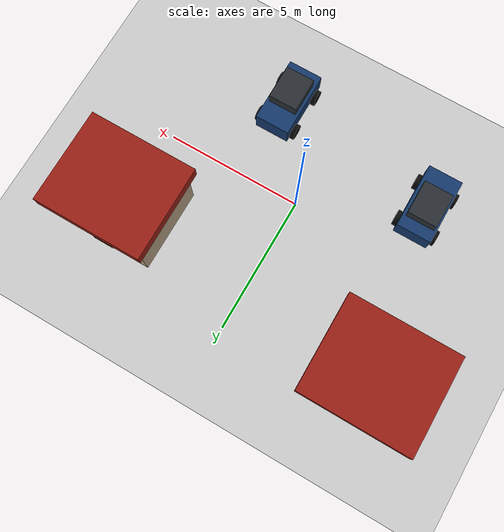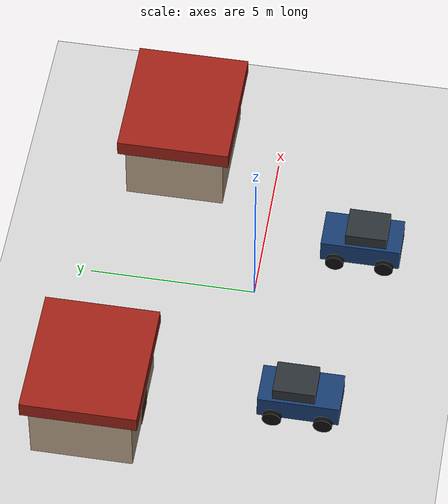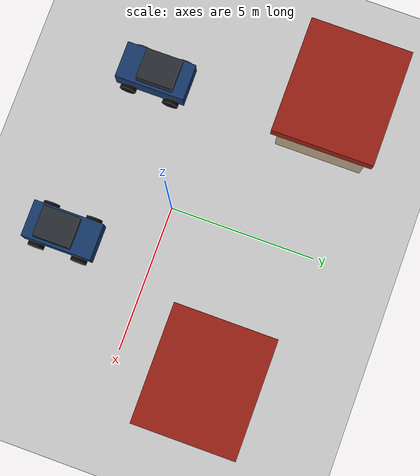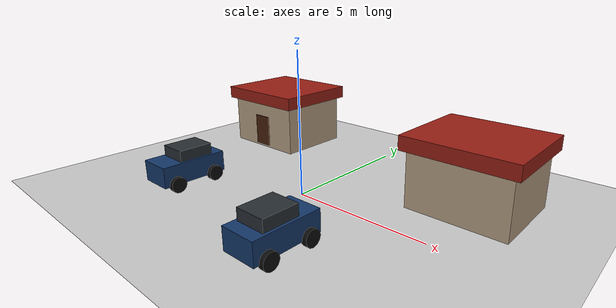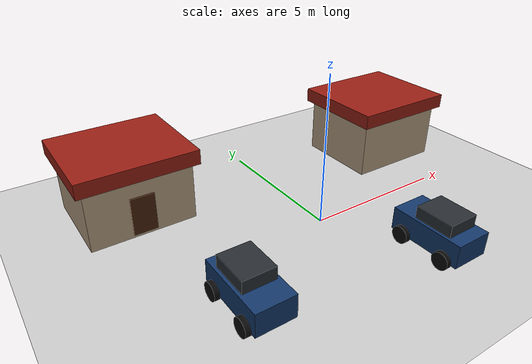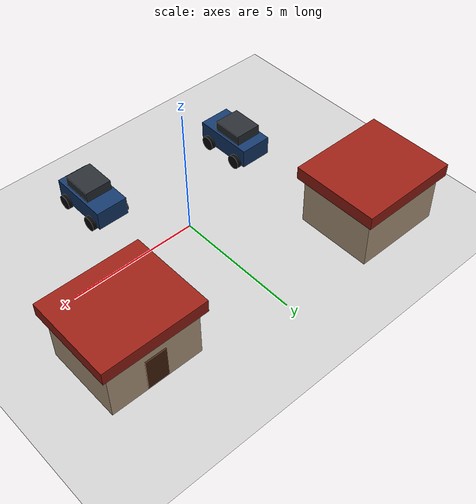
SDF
<?xml version="1.0" ?>
<sdf version="1.5">
    <world name="default">
        <physics type="ode">
            <max_step_size>0.0005</max_step_size>
            <real_time_factor>1</real_time_factor>
            <real_time_update_rate>2000</real_time_update_rate>
            <gravity>0 0 -9.81</gravity>
            <ode>
                <solver>
                    <type>quick</type>
                    <iters>50</iters>
                    <sor>1.3</sor>
                </solver>
                <constraints>
                    <cfm>0.0</cfm>
                    <erp>0.2</erp>
                    <contact_max_correcting_vel>10.0</contact_max_correcting_vel>
                    <contact_surface_layer>0.001</contact_surface_layer>
                </constraints>
            </ode>
        </physics>

        <scene>
            <sky>
                <clouds>
                    <speed>12</speed>
                </clouds>
            </sky>
        </scene>

        <include>
            <uri>model://sun</uri>
        </include>
        <include>
            <uri>model://ground_plane</uri>
        </include>

        <include>
            <name>house_0</name>
            <uri>model://simple_house</uri>
            <pose>5 3 0 0 0 3.14159</pose>
        </include>
        <include>
            <name>house_1</name>
            <uri>model://simple_house</uri>
            <pose>-5 4 0 0 0 0</pose>
        </include>
        <include>
            <name>suv_0</name>
            <uri>model://simple_suv</uri>
            <pose>2 -3 0 0 0 1.5708</pose>
        </include>
        <include>
            <name>suv_1</name>
            <uri>model://simple_suv</uri>
            <pose>-4 -2 0 0 0 -1.5708</pose>
        </include>
    </world>
</sdf>

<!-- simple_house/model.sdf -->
<sdf version="1.5">
    <model name="simple_house">
        <static>true</static>
        <link name="house">
            <pose>0 0 1.0 0 0 0</pose>
            <collision name="walls_collision">
                <geometry>
                    <box>
                        <size>3.5 3.0 2.0</size>
                    </box>
                </geometry>
            </collision>
            <visual name="walls_visual">
                <geometry>
                    <box>
                        <size>3.5 3.0 2.0</size>
                    </box>
                </geometry>
                <material>
                    <ambient>0.72 0.63 0.52 1</ambient>
                    <diffuse>0.72 0.63 0.52 1</diffuse>
                </material>
            </visual>
        </link>
        <link name="roof">
            <pose>0 0 2.25 0 0 0</pose>
            <visual name="roof_visual">
                <geometry>
                    <box>
                        <size>3.9 3.4 0.5</size>
                    </box>
                </geometry>
                <material>
                    <ambient>0.45 0.08 0.06 1</ambient>
                    <diffuse>0.6 0.12 0.08 1</diffuse>
                </material>
            </visual>
        </link>
        <link name="door">
            <pose>0 -1.51 0.75 0 0 0</pose>
            <visual name="door_visual">
                <geometry>
                    <box>
                        <size>0.8 0.05 1.3</size>
                    </box>
                </geometry>
                <material>
                    <ambient>0.2 0.09 0.03 1</ambient>
                    <diffuse>0.28 0.13 0.05 1</diffuse>
                </material>
            </visual>
        </link>
    </model>
</sdf>

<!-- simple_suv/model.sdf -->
<sdf version="1.5">
    <model name="simple_suv">
        <static>true</static>

        <link name="body">
            <pose>0 0 0.65 0 0 0</pose>
            <collision name="body_collision">
                <geometry>
                    <box>
                        <size>2.4 1.25 0.75</size>
                    </box>
                </geometry>
            </collision>
            <visual name="body_visual">
                <geometry>
                    <box>
                        <size>2.4 1.25 0.75</size>
                    </box>
                </geometry>
                <material>
                    <ambient>0.05 0.12 0.22 1</ambient>
                    <diffuse>0.08 0.22 0.42 1</diffuse>
                    <specular>0.18 0.20 0.22 1</specular>
                </material>
            </visual>
        </link>

        <link name="cabin">
            <pose>-0.15 0 1.15 0 0 0</pose>
            <collision name="cabin_collision">
                <geometry>
                    <box>
                        <size>1.25 1.05 0.55</size>
                    </box>
                </geometry>
            </collision>
            <visual name="cabin_visual">
                <geometry>
                    <box>
                        <size>1.25 1.05 0.55</size>
                    </box>
                </geometry>
                <material>
                    <ambient>0.08 0.09 0.10 1</ambient>
                    <diffuse>0.16 0.18 0.20 1</diffuse>
                    <specular>0.30 0.32 0.34 1</specular>
                </material>
            </visual>
        </link>

        <link name="wheels">
            <pose>0 0 0 0 0 0</pose>
            <visual name="front_left_wheel">
                <pose>0.75 0.68 0.32 1.5708 0 0</pose>
                <geometry><cylinder><radius>0.28</radius><length>0.20</length></cylinder></geometry>
                <material><ambient>0.02 0.02 0.02 1</ambient><diffuse>0.04 0.04 0.04 1</diffuse></material>
            </visual>
            <visual name="front_right_wheel">
                <pose>0.75 -0.68 0.32 1.5708 0 0</pose>
                <geometry><cylinder><radius>0.28</radius><length>0.20</length></cylinder></geometry>
                <material><ambient>0.02 0.02 0.02 1</ambient><diffuse>0.04 0.04 0.04 1</diffuse></material>
            </visual>
            <visual name="rear_left_wheel">
                <pose>-0.75 0.68 0.32 1.5708 0 0</pose>
                <geometry><cylinder><radius>0.28</radius><length>0.20</length></cylinder></geometry>
                <material><ambient>0.02 0.02 0.02 1</ambient><diffuse>0.04 0.04 0.04 1</diffuse></material>
            </visual>
            <visual name="rear_right_wheel">
                <pose>-0.75 -0.68 0.32 1.5708 0 0</pose>
                <geometry><cylinder><radius>0.28</radius><length>0.20</length></cylinder></geometry>
                <material><ambient>0.02 0.02 0.02 1</ambient><diffuse>0.04 0.04 0.04 1</diffuse></material>
            </visual>
        </link>
    </model>
</sdf>
